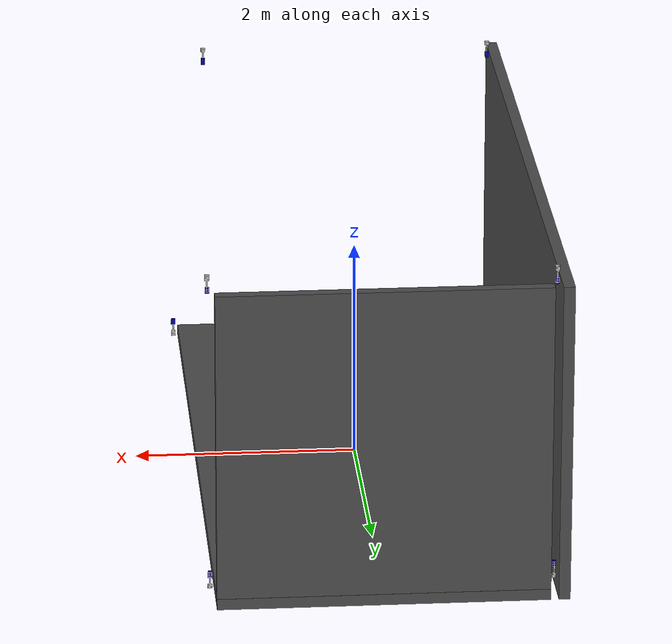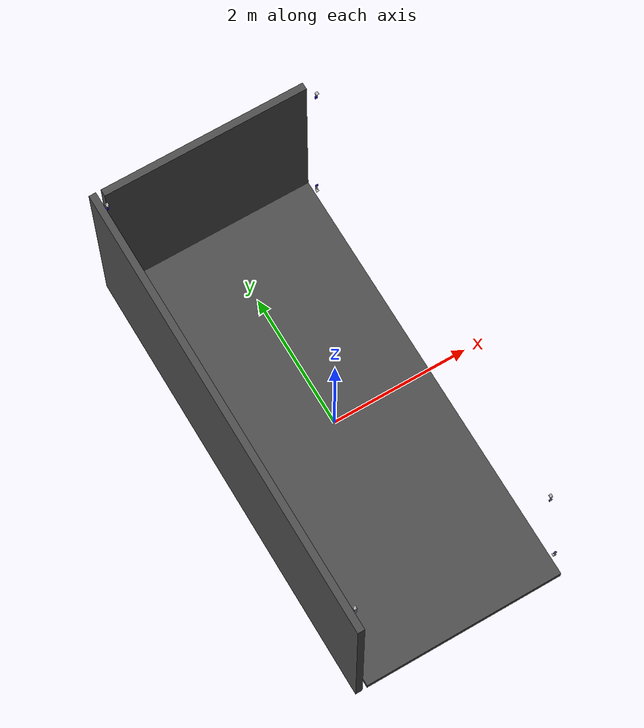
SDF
<?xml version="1.0" ?>
<sdf version="1.5">
  <world name="default">
    <!-- global light source -->
    <include>
      <uri>model://sun</uri>
    </include>

    <!-- ground plane -->
    <include>
      <uri>model://mur1</uri>
      <pose>0 0 -0.05 0 0 0</pose>
    </include>

    <!-- Set anchors for the room -->
    <!-- Noeud 0 -->
    <model name="noeud0">
      <pose>1.5 -3 0 0 0 -1.57</pose>
      <include>
        <uri>model://anchor_stand</uri>
      </include>
    </model>

    <!-- Noeud 1 -->
    <model name="noeud1">
      <pose>1.5 3 0 0 0 1.57</pose>
      <include>
        <uri>model://anchor_stand</uri>
      </include>
    </model>

    <!-- Noeud 2 -->
    <model name="noeud2">
      <pose>-1.5 3 0 0 0 1.57</pose>
      <include>
        <uri>model://anchor_stand</uri>
      </include>
    </model>

    <!-- Noeud 3 -->
    <model name="noeud3">
      <pose>-1.5 -3 0 0 0 -1.57</pose>
      <include>
        <uri>model://anchor_stand</uri>
      </include>
    </model>

    <!-- Noeud 4 -->
    <model name="noeud4">
      <pose>-1.5 3 2.9 3.1415 0 1.57</pose>
      <include>
        <uri>model://anchor_stand</uri>
      </include>
    </model>

    <!-- Noeud 5 -->
    <model name="noeud5">
      <pose>-1.5 -3 2.9 3.1415 0 -1.57</pose>
      <include>
        <uri>model://anchor_stand</uri>
      </include>
    </model>

    <!-- Noeud 6 -->
    <model name="noeud6">
      <pose>1.2 -3 2.9 3.1415 0 -1.57</pose>
      <include>
        <uri>model://anchor_stand</uri>
      </include>
    </model>

    <!-- Noeud 7 -->
    <model name="noeud7">
      <pose>1.5 3 2.9 3.1415 0 1.57</pose>
      <include>
        <uri>model://anchor_stand</uri>
      </include>
    </model>

    <!-- Side walls -->
    <include>
      <pose>-1.57 0 1.35 0 1.57 0</pose>
      <uri>model://mur1</uri>
    </include>

    <include>
      <pose>0 3.2 1.35 1.57 0 0</pose>
      <uri>model://mur2</uri>
    </include>

    <!-- obstacles -->

    <physics name='default_physics' default='0' type='ode'>
      <gravity>0 0 -9.8066</gravity>
      <ode>
        <solver>
          <type>quick</type>
          <iters>30</iters>
          <sor>1.3</sor>
          <use_dynamic_moi_rescaling>0</use_dynamic_moi_rescaling>
        </solver>
        <constraints>
          <cfm>0</cfm>
          <erp>0.2</erp>
          <contact_max_correcting_vel>100</contact_max_correcting_vel>
          <contact_surface_layer>0.001</contact_surface_layer>
        </constraints>
      </ode>
      <max_step_size>0.002</max_step_size>
      <real_time_factor>1</real_time_factor>
      <real_time_update_rate>500</real_time_update_rate>
      <magnetic_field>6.0e-6 2.3e-5 -4.2e-5</magnetic_field>
    </physics>
    <gui fullscreen='0'>
      <camera name='user_camera'>
        <pose>1.046088 -5.046417 0.688869 0 -0.008001 1.818801</pose>
      </camera>
    </gui>
  </world>
</sdf>

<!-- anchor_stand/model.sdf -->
<sdf version="1.5">
  <model name="anchor_stand">
    <static>true</static>
    <link name="link">
      <collision name="collision">
        <geometry>
          <box>
            <size>0.02 0.02 0.19</size>
          </box>
        </geometry>
      </collision>
      <visual name="visual">
        <geometry>
          <mesh>
            <uri>model://anchor_stand/meshes/anchor_stand.dae</uri>
          </mesh>
        </geometry>
      </visual>
    </link>
  </model>
</sdf>

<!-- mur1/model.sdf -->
<sdf version="1.5">
  <model name="mur1">
    <static>true</static>
    <link name="link">
      <collision name="collision">
        <geometry>
          <box>
            <size>2.9 6.5 0.1</size>
          </box>
        </geometry>
      </collision>
      <visual name="visual">
        <cast_shadows>false</cast_shadows>
        <geometry>
          <box>
            <size>2.9 6.5 0.1</size>
          </box>
        </geometry>
        <material>
          <script>
            <uri>model://asphalt_plane/materials/scripts</uri>
            <uri>model://asphalt_plane/materials/textures</uri>
            <name>vrc/asphalt</name>
          </script>
        </material>
      </visual>
    </link>
  </model>
</sdf>

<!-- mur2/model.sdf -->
<sdf version="1.5">
  <model name="mur2">
    <static>true</static>
    <link name="link">
      <collision name="collision">
        <geometry>
          <box>
            <size>2.9 2.9 0.1</size>
          </box>
        </geometry>
      </collision>
      <visual name="visual">
        <cast_shadows>false</cast_shadows>
        <geometry>
          <box>
            <size>2.9 2.9 0.1</size>
          </box>
        </geometry>
        <material>
          <script>
            <uri>model://asphalt_plane/materials/scripts</uri>
            <uri>model://asphalt_plane/materials/textures</uri>
            <name>vrc/asphalt</name>
          </script>
        </material>
      </visual>
    </link>
  </model>
</sdf>
